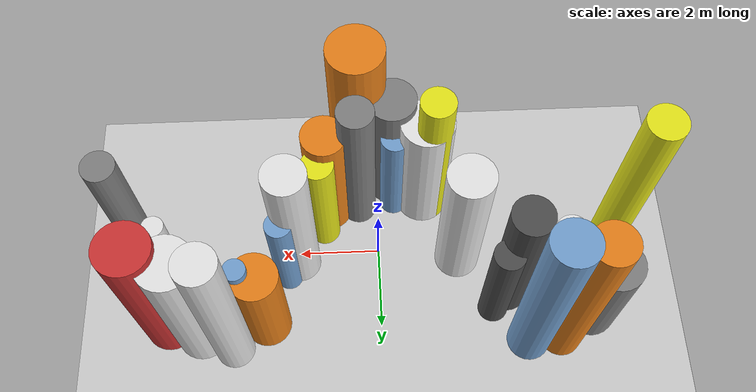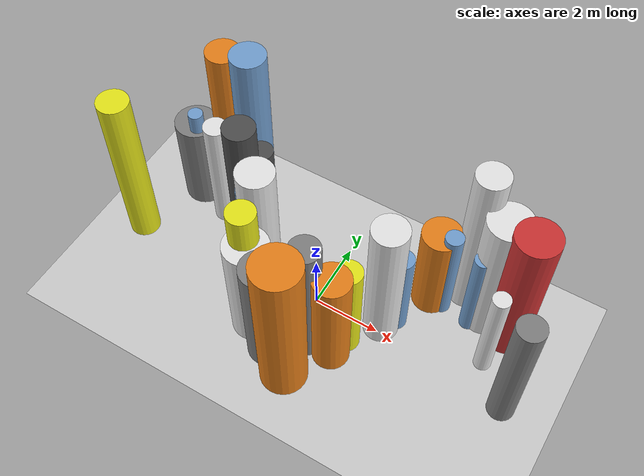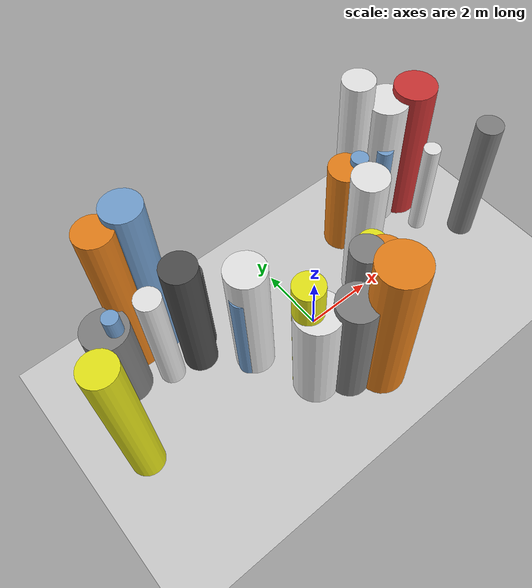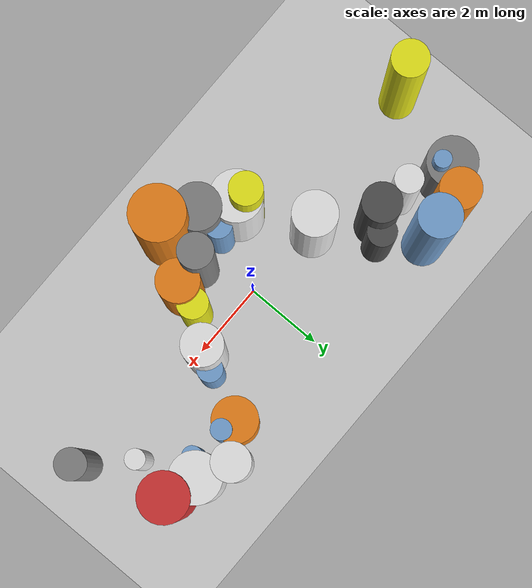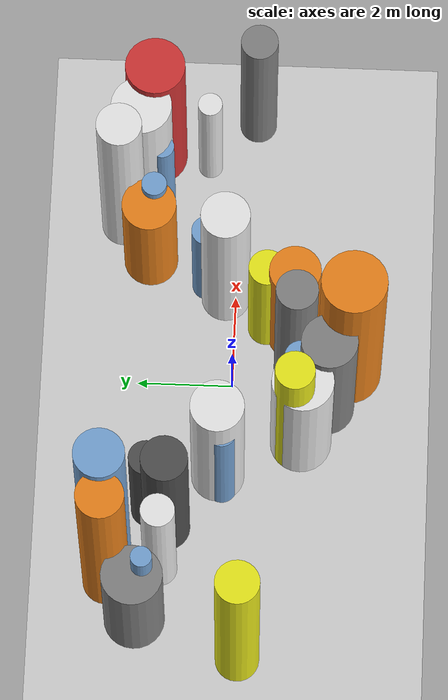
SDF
<?xml version='1.0'?>
<sdf version='1.6'>
  <world name='routeA_rl_v1__dense_recovery__rl_train__s_turn_multi_obstacle__000099'>
    <!-- Sun light -->
    <light name='sun' type='directional'>
      <cast_shadows>1</cast_shadows>
      <pose>0 0 10 0 0 0</pose>
      <diffuse>0.8 0.8 0.8 1</diffuse>
      <specular>0.2 0.2 0.2 1</specular>
      <attenuation>
        <range>1000</range>
        <constant>0.9</constant>
        <linear>0.01</linear>
        <quadratic>0.001</quadratic>
      </attenuation>
      <direction>-0.5 0.1 -0.9</direction>
    </light>

    <!-- Ground plane -->
    <model name='ground_plane'>
      <static>1</static>
      <link name='link'>
        <collision name='collision'>
          <geometry>
            <plane>
              <normal>0 0 1</normal>
              <size>100 100</size>
            </plane>
          </geometry>
          <surface>
            <contact>
              <collide_bitmask>65535</collide_bitmask>
              <ode/>
            </contact>
            <friction>
              <ode>
                <mu>100</mu>
                <mu2>50</mu2>
              </ode>
              <torsional><ode/></torsional>
            </friction>
            <bounce/>
          </surface>
          <max_contacts>10</max_contacts>
        </collision>
        <visual name='visual'>
          <cast_shadows>0</cast_shadows>
          <geometry>
            <plane>
              <normal>0 0 1</normal>
              <size>100 100</size>
            </plane>
          </geometry>
          <material>
            <script>
              <uri>file://media/materials/scripts/gazebo.material</uri>
              <n>Gazebo/Grey</n>
            </script>
          </material>
        </visual>
      </link>
    </model>

    <!-- Environment -->
    <magnetic_field>6e-06 2.3e-05 -4.2e-05</magnetic_field>
    <atmosphere type='adiabatic'/>
    <physics name='default_physics' default='0' type='ode'>
      <gravity>0 0 -9.8</gravity>
      <max_step_size>0.004</max_step_size>
      <real_time_factor>1</real_time_factor>
      <real_time_update_rate>250</real_time_update_rate>
    </physics>
    <scene>
      <ambient>0.4 0.4 0.4 1</ambient>
      <background>0.7 0.7 0.7 1</background>
      <shadows>1</shadows>
    </scene>
    <wind/>
    <spherical_coordinates>
      <surface_model>EARTH_WGS84</surface_model>
      <latitude_deg>0</latitude_deg>
      <longitude_deg>0</longitude_deg>
      <elevation>0</elevation>
      <heading_deg>0</heading_deg>
    </spherical_coordinates>

    <!-- ============ OBSTACLES (28) ============ -->
    <model name='s_turn_obs_0'>
      <static>1</static>
      <link name='link'>
        <visual name='visual'>
          <geometry>
            <cylinder>
              <radius>0.4562</radius>
              <length>5.4631</length>
            </cylinder>
          </geometry>
          <material>
            <script>
              <n>Gazebo/Yellow</n>
              <uri>file://media/materials/scripts/gazebo.material</uri>
            </script>
            <ambient>0.9 0.9 0.1 1</ambient>
          </material>
        </visual>
        <collision name='collision'>
          <geometry>
            <cylinder>
              <radius>0.4562</radius>
              <length>5.4631</length>
            </cylinder>
          </geometry>
          <max_contacts>10</max_contacts>
          <surface>
            <contact><ode/></contact>
            <bounce/>
            <friction>
              <ode><mu>1</mu><mu2>1</mu2></ode>
              <torsional><ode/></torsional>
            </friction>
          </surface>
        </collision>
      </link>
      <pose>-6.0000 -0.3263 2.7315 0 0 0.0000</pose>
    </model>

    <model name='s_turn_obs_1'>
      <static>1</static>
      <link name='link'>
        <visual name='visual'>
          <geometry>
            <cylinder>
              <radius>0.6330</radius>
              <length>3.0992</length>
            </cylinder>
          </geometry>
          <material>
            <script>
              <n>Gazebo/Grey</n>
              <uri>file://media/materials/scripts/gazebo.material</uri>
            </script>
            <ambient>0.5 0.5 0.5 1</ambient>
          </material>
        </visual>
        <collision name='collision'>
          <geometry>
            <cylinder>
              <radius>0.6330</radius>
              <length>3.0992</length>
            </cylinder>
          </geometry>
          <max_contacts>10</max_contacts>
          <surface>
            <contact><ode/></contact>
            <bounce/>
            <friction>
              <ode><mu>1</mu><mu2>1</mu2></ode>
              <torsional><ode/></torsional>
            </friction>
          </surface>
        </collision>
      </link>
      <pose>-5.2000 1.8387 1.5496 0 0 0.0000</pose>
    </model>

    <model name='s_turn_obs_2'>
      <static>1</static>
      <link name='link'>
        <visual name='visual'>
          <geometry>
            <cylinder>
              <radius>0.4954</radius>
              <length>5.7489</length>
            </cylinder>
          </geometry>
          <material>
            <script>
              <n>Gazebo/Orange</n>
              <uri>file://media/materials/scripts/gazebo.material</uri>
            </script>
            <ambient>0.9 0.5 0.1 1</ambient>
          </material>
        </visual>
        <collision name='collision'>
          <geometry>
            <cylinder>
              <radius>0.4954</radius>
              <length>5.7489</length>
            </cylinder>
          </geometry>
          <max_contacts>10</max_contacts>
          <surface>
            <contact><ode/></contact>
            <bounce/>
            <friction>
              <ode><mu>1</mu><mu2>1</mu2></ode>
              <torsional><ode/></torsional>
            </friction>
          </surface>
        </collision>
      </link>
      <pose>-4.4000 2.4538 2.8744 0 0 0.0000</pose>
    </model>

    <model name='s_turn_obs_3'>
      <static>1</static>
      <link name='link'>
        <visual name='visual'>
          <geometry>
            <cylinder>
              <radius>0.5235</radius>
              <length>5.9582</length>
            </cylinder>
          </geometry>
          <material>
            <script>
              <n>Gazebo/Blue</n>
              <uri>file://media/materials/scripts/gazebo.material</uri>
            </script>
            <ambient>0.447 0.624 0.812 1</ambient>
          </material>
        </visual>
        <collision name='collision'>
          <geometry>
            <cylinder>
              <radius>0.5235</radius>
              <length>5.9582</length>
            </cylinder>
          </geometry>
          <max_contacts>10</max_contacts>
          <surface>
            <contact><ode/></contact>
            <bounce/>
            <friction>
              <ode><mu>1</mu><mu2>1</mu2></ode>
              <torsional><ode/></torsional>
            </friction>
          </surface>
        </collision>
      </link>
      <pose>-3.6000 2.5004 2.9791 0 0 0.0000</pose>
    </model>

    <model name='s_turn_obs_4'>
      <static>1</static>
      <link name='link'>
        <visual name='visual'>
          <geometry>
            <cylinder>
              <radius>0.3674</radius>
              <length>3.4123</length>
            </cylinder>
          </geometry>
          <material>
            <script>
              <n>Gazebo/DarkGrey</n>
              <uri>file://media/materials/scripts/gazebo.material</uri>
            </script>
            <ambient>0.3 0.3 0.3 1</ambient>
          </material>
        </visual>
        <collision name='collision'>
          <geometry>
            <cylinder>
              <radius>0.3674</radius>
              <length>3.4123</length>
            </cylinder>
          </geometry>
          <max_contacts>10</max_contacts>
          <surface>
            <contact><ode/></contact>
            <bounce/>
            <friction>
              <ode><mu>1</mu><mu2>1</mu2></ode>
              <torsional><ode/></torsional>
            </friction>
          </surface>
        </collision>
      </link>
      <pose>-2.8000 1.6456 1.7061 0 0 0.0000</pose>
    </model>

    <model name='s_turn_obs_5'>
      <static>1</static>
      <link name='link'>
        <visual name='visual'>
          <geometry>
            <cylinder>
              <radius>0.5563</radius>
              <length>4.4629</length>
            </cylinder>
          </geometry>
          <material>
            <script>
              <n>Gazebo/White</n>
              <uri>file://media/materials/scripts/gazebo.material</uri>
            </script>
            <ambient>0.9 0.9 0.9 1</ambient>
          </material>
        </visual>
        <collision name='collision'>
          <geometry>
            <cylinder>
              <radius>0.5563</radius>
              <length>4.4629</length>
            </cylinder>
          </geometry>
          <max_contacts>10</max_contacts>
          <surface>
            <contact><ode/></contact>
            <bounce/>
            <friction>
              <ode><mu>1</mu><mu2>1</mu2></ode>
              <torsional><ode/></torsional>
            </friction>
          </surface>
        </collision>
      </link>
      <pose>-2.0000 0.2306 2.2315 0 0 0.0000</pose>
    </model>

    <model name='s_turn_obs_6'>
      <static>1</static>
      <link name='link'>
        <visual name='visual'>
          <geometry>
            <cylinder>
              <radius>0.6421</radius>
              <length>3.8679</length>
            </cylinder>
          </geometry>
          <material>
            <script>
              <n>Gazebo/White</n>
              <uri>file://media/materials/scripts/gazebo.material</uri>
            </script>
            <ambient>0.9 0.9 0.9 1</ambient>
          </material>
        </visual>
        <collision name='collision'>
          <geometry>
            <cylinder>
              <radius>0.6421</radius>
              <length>3.8679</length>
            </cylinder>
          </geometry>
          <max_contacts>10</max_contacts>
          <surface>
            <contact><ode/></contact>
            <bounce/>
            <friction>
              <ode><mu>1</mu><mu2>1</mu2></ode>
              <torsional><ode/></torsional>
            </friction>
          </surface>
        </collision>
      </link>
      <pose>-1.2000 -1.4800 1.9340 0 0 0.0000</pose>
    </model>

    <model name='s_turn_obs_7'>
      <static>1</static>
      <link name='link'>
        <visual name='visual'>
          <geometry>
            <cylinder>
              <radius>0.5845</radius>
              <length>4.0990</length>
            </cylinder>
          </geometry>
          <material>
            <script>
              <n>Gazebo/Grey</n>
              <uri>file://media/materials/scripts/gazebo.material</uri>
            </script>
            <ambient>0.5 0.5 0.5 1</ambient>
          </material>
        </visual>
        <collision name='collision'>
          <geometry>
            <cylinder>
              <radius>0.5845</radius>
              <length>4.0990</length>
            </cylinder>
          </geometry>
          <max_contacts>10</max_contacts>
          <surface>
            <contact><ode/></contact>
            <bounce/>
            <friction>
              <ode><mu>1</mu><mu2>1</mu2></ode>
              <torsional><ode/></torsional>
            </friction>
          </surface>
        </collision>
      </link>
      <pose>-0.4000 -1.9954 2.0495 0 0 0.0000</pose>
    </model>

    <model name='s_turn_obs_8'>
      <static>1</static>
      <link name='link'>
        <visual name='visual'>
          <geometry>
            <cylinder>
              <radius>0.6783</radius>
              <length>5.4381</length>
            </cylinder>
          </geometry>
          <material>
            <script>
              <n>Gazebo/Orange</n>
              <uri>file://media/materials/scripts/gazebo.material</uri>
            </script>
            <ambient>0.9 0.5 0.1 1</ambient>
          </material>
        </visual>
        <collision name='collision'>
          <geometry>
            <cylinder>
              <radius>0.6783</radius>
              <length>5.4381</length>
            </cylinder>
          </geometry>
          <max_contacts>10</max_contacts>
          <surface>
            <contact><ode/></contact>
            <bounce/>
            <friction>
              <ode><mu>1</mu><mu2>1</mu2></ode>
              <torsional><ode/></torsional>
            </friction>
          </surface>
        </collision>
      </link>
      <pose>0.4000 -2.4453 2.7190 0 0 0.0000</pose>
    </model>

    <model name='s_turn_obs_9'>
      <static>1</static>
      <link name='link'>
        <visual name='visual'>
          <geometry>
            <cylinder>
              <radius>0.5370</radius>
              <length>3.8668</length>
            </cylinder>
          </geometry>
          <material>
            <script>
              <n>Gazebo/Orange</n>
              <uri>file://media/materials/scripts/gazebo.material</uri>
            </script>
            <ambient>0.9 0.5 0.1 1</ambient>
          </material>
        </visual>
        <collision name='collision'>
          <geometry>
            <cylinder>
              <radius>0.5370</radius>
              <length>3.8668</length>
            </cylinder>
          </geometry>
          <max_contacts>10</max_contacts>
          <surface>
            <contact><ode/></contact>
            <bounce/>
            <friction>
              <ode><mu>1</mu><mu2>1</mu2></ode>
              <torsional><ode/></torsional>
            </friction>
          </surface>
        </collision>
      </link>
      <pose>1.2000 -1.2447 1.9334 0 0 0.0000</pose>
    </model>

    <model name='s_turn_obs_10'>
      <static>1</static>
      <link name='link'>
        <visual name='visual'>
          <geometry>
            <cylinder>
              <radius>0.5128</radius>
              <length>4.7902</length>
            </cylinder>
          </geometry>
          <material>
            <script>
              <n>Gazebo/White</n>
              <uri>file://media/materials/scripts/gazebo.material</uri>
            </script>
            <ambient>0.9 0.9 0.9 1</ambient>
          </material>
        </visual>
        <collision name='collision'>
          <geometry>
            <cylinder>
              <radius>0.5128</radius>
              <length>4.7902</length>
            </cylinder>
          </geometry>
          <max_contacts>10</max_contacts>
          <surface>
            <contact><ode/></contact>
            <bounce/>
            <friction>
              <ode><mu>1</mu><mu2>1</mu2></ode>
              <torsional><ode/></torsional>
            </friction>
          </surface>
        </collision>
      </link>
      <pose>2.0000 0.2168 2.3951 0 0 0.0000</pose>
    </model>

    <model name='s_turn_obs_11'>
      <static>1</static>
      <link name='link'>
        <visual name='visual'>
          <geometry>
            <cylinder>
              <radius>0.5695</radius>
              <length>3.2127</length>
            </cylinder>
          </geometry>
          <material>
            <script>
              <n>Gazebo/Orange</n>
              <uri>file://media/materials/scripts/gazebo.material</uri>
            </script>
            <ambient>0.9 0.5 0.1 1</ambient>
          </material>
        </visual>
        <collision name='collision'>
          <geometry>
            <cylinder>
              <radius>0.5695</radius>
              <length>3.2127</length>
            </cylinder>
          </geometry>
          <max_contacts>10</max_contacts>
          <surface>
            <contact><ode/></contact>
            <bounce/>
            <friction>
              <ode><mu>1</mu><mu2>1</mu2></ode>
              <torsional><ode/></torsional>
            </friction>
          </surface>
        </collision>
      </link>
      <pose>2.8000 1.8386 1.6064 0 0 0.0000</pose>
    </model>

    <model name='s_turn_obs_12'>
      <static>1</static>
      <link name='link'>
        <visual name='visual'>
          <geometry>
            <cylinder>
              <radius>0.4715</radius>
              <length>5.5328</length>
            </cylinder>
          </geometry>
          <material>
            <script>
              <n>Gazebo/White</n>
              <uri>file://media/materials/scripts/gazebo.material</uri>
            </script>
            <ambient>0.9 0.9 0.9 1</ambient>
          </material>
        </visual>
        <collision name='collision'>
          <geometry>
            <cylinder>
              <radius>0.4715</radius>
              <length>5.5328</length>
            </cylinder>
          </geometry>
          <max_contacts>10</max_contacts>
          <surface>
            <contact><ode/></contact>
            <bounce/>
            <friction>
              <ode><mu>1</mu><mu2>1</mu2></ode>
              <torsional><ode/></torsional>
            </friction>
          </surface>
        </collision>
      </link>
      <pose>3.6000 2.4510 2.7664 0 0 0.0000</pose>
    </model>

    <model name='s_turn_obs_13'>
      <static>1</static>
      <link name='link'>
        <visual name='visual'>
          <geometry>
            <cylinder>
              <radius>0.6304</radius>
              <length>4.6751</length>
            </cylinder>
          </geometry>
          <material>
            <script>
              <n>Gazebo/White</n>
              <uri>file://media/materials/scripts/gazebo.material</uri>
            </script>
            <ambient>0.9 0.9 0.9 1</ambient>
          </material>
        </visual>
        <collision name='collision'>
          <geometry>
            <cylinder>
              <radius>0.6304</radius>
              <length>4.6751</length>
            </cylinder>
          </geometry>
          <max_contacts>10</max_contacts>
          <surface>
            <contact><ode/></contact>
            <bounce/>
            <friction>
              <ode><mu>1</mu><mu2>1</mu2></ode>
              <torsional><ode/></torsional>
            </friction>
          </surface>
        </collision>
      </link>
      <pose>4.4000 2.0442 2.3375 0 0 0.0000</pose>
    </model>

    <model name='s_turn_obs_14'>
      <static>1</static>
      <link name='link'>
        <visual name='visual'>
          <geometry>
            <cylinder>
              <radius>0.6217</radius>
              <length>4.8868</length>
            </cylinder>
          </geometry>
          <material>
            <script>
              <n>Gazebo/Red</n>
              <uri>file://media/materials/scripts/gazebo.material</uri>
            </script>
            <ambient>0.8 0.2 0.2 1</ambient>
          </material>
        </visual>
        <collision name='collision'>
          <geometry>
            <cylinder>
              <radius>0.6217</radius>
              <length>4.8868</length>
            </cylinder>
          </geometry>
          <max_contacts>10</max_contacts>
          <surface>
            <contact><ode/></contact>
            <bounce/>
            <friction>
              <ode><mu>1</mu><mu2>1</mu2></ode>
              <torsional><ode/></torsional>
            </friction>
          </surface>
        </collision>
      </link>
      <pose>5.2000 1.7889 2.4434 0 0 0.0000</pose>
    </model>

    <model name='s_turn_obs_15'>
      <static>1</static>
      <link name='link'>
        <visual name='visual'>
          <geometry>
            <cylinder>
              <radius>0.3886</radius>
              <length>4.4620</length>
            </cylinder>
          </geometry>
          <material>
            <script>
              <n>Gazebo/Grey</n>
              <uri>file://media/materials/scripts/gazebo.material</uri>
            </script>
            <ambient>0.5 0.5 0.5 1</ambient>
          </material>
        </visual>
        <collision name='collision'>
          <geometry>
            <cylinder>
              <radius>0.3886</radius>
              <length>4.4620</length>
            </cylinder>
          </geometry>
          <max_contacts>10</max_contacts>
          <surface>
            <contact><ode/></contact>
            <bounce/>
            <friction>
              <ode><mu>1</mu><mu2>1</mu2></ode>
              <torsional><ode/></torsional>
            </friction>
          </surface>
        </collision>
      </link>
      <pose>6.0000 -0.3356 2.2310 0 0 0.0000</pose>
    </model>

    <model name='s_turn_obs2_0'>
      <static>1</static>
      <link name='link'>
        <visual name='visual'>
          <geometry>
            <cylinder>
              <radius>0.2207</radius>
              <length>3.7185</length>
            </cylinder>
          </geometry>
          <material>
            <script>
              <n>Gazebo/Blue</n>
              <uri>file://media/materials/scripts/gazebo.material</uri>
            </script>
            <ambient>0.447 0.624 0.812 1</ambient>
          </material>
        </visual>
        <collision name='collision'>
          <geometry>
            <cylinder>
              <radius>0.2207</radius>
              <length>3.7185</length>
            </cylinder>
          </geometry>
          <max_contacts>10</max_contacts>
          <surface>
            <contact><ode/></contact>
            <bounce/>
            <friction>
              <ode><mu>1</mu><mu2>1</mu2></ode>
              <torsional><ode/></torsional>
            </friction>
          </surface>
        </collision>
      </link>
      <pose>-5.0000 1.6427 1.8592 0 0 0.0000</pose>
    </model>

    <model name='s_turn_obs2_1'>
      <static>1</static>
      <link name='link'>
        <visual name='visual'>
          <geometry>
            <cylinder>
              <radius>0.3544</radius>
              <length>3.9677</length>
            </cylinder>
          </geometry>
          <material>
            <script>
              <n>Gazebo/White</n>
              <uri>file://media/materials/scripts/gazebo.material</uri>
            </script>
            <ambient>0.9 0.9 0.9 1</ambient>
          </material>
        </visual>
        <collision name='collision'>
          <geometry>
            <cylinder>
              <radius>0.3544</radius>
              <length>3.9677</length>
            </cylinder>
          </geometry>
          <max_contacts>10</max_contacts>
          <surface>
            <contact><ode/></contact>
            <bounce/>
            <friction>
              <ode><mu>1</mu><mu2>1</mu2></ode>
              <torsional><ode/></torsional>
            </friction>
          </surface>
        </collision>
      </link>
      <pose>-4.0909 1.3493 1.9838 0 0 0.0000</pose>
    </model>

    <model name='s_turn_obs2_2'>
      <static>1</static>
      <link name='link'>
        <visual name='visual'>
          <geometry>
            <cylinder>
              <radius>0.4855</radius>
              <length>4.5311</length>
            </cylinder>
          </geometry>
          <material>
            <script>
              <n>Gazebo/DarkGrey</n>
              <uri>file://media/materials/scripts/gazebo.material</uri>
            </script>
            <ambient>0.3 0.3 0.3 1</ambient>
          </material>
        </visual>
        <collision name='collision'>
          <geometry>
            <cylinder>
              <radius>0.4855</radius>
              <length>4.5311</length>
            </cylinder>
          </geometry>
          <max_contacts>10</max_contacts>
          <surface>
            <contact><ode/></contact>
            <bounce/>
            <friction>
              <ode><mu>1</mu><mu2>1</mu2></ode>
              <torsional><ode/></torsional>
            </friction>
          </surface>
        </collision>
      </link>
      <pose>-3.1818 1.2489 2.2655 0 0 0.0000</pose>
    </model>

    <model name='s_turn_obs2_3'>
      <static>1</static>
      <link name='link'>
        <visual name='visual'>
          <geometry>
            <cylinder>
              <radius>0.3106</radius>
              <length>3.6289</length>
            </cylinder>
          </geometry>
          <material>
            <script>
              <n>Gazebo/Blue</n>
              <uri>file://media/materials/scripts/gazebo.material</uri>
            </script>
            <ambient>0.447 0.624 0.812 1</ambient>
          </material>
        </visual>
        <collision name='collision'>
          <geometry>
            <cylinder>
              <radius>0.3106</radius>
              <length>3.6289</length>
            </cylinder>
          </geometry>
          <max_contacts>10</max_contacts>
          <surface>
            <contact><ode/></contact>
            <bounce/>
            <friction>
              <ode><mu>1</mu><mu2>1</mu2></ode>
              <torsional><ode/></torsional>
            </friction>
          </surface>
        </collision>
      </link>
      <pose>-2.2727 0.1358 1.8145 0 0 0.0000</pose>
    </model>

    <model name='s_turn_obs2_4'>
      <static>1</static>
      <link name='link'>
        <visual name='visual'>
          <geometry>
            <cylinder>
              <radius>0.4101</radius>
              <length>4.9687</length>
            </cylinder>
          </geometry>
          <material>
            <script>
              <n>Gazebo/Yellow</n>
              <uri>file://media/materials/scripts/gazebo.material</uri>
            </script>
            <ambient>0.9 0.9 0.1 1</ambient>
          </material>
        </visual>
        <collision name='collision'>
          <geometry>
            <cylinder>
              <radius>0.4101</radius>
              <length>4.9687</length>
            </cylinder>
          </geometry>
          <max_contacts>10</max_contacts>
          <surface>
            <contact><ode/></contact>
            <bounce/>
            <friction>
              <ode><mu>1</mu><mu2>1</mu2></ode>
              <torsional><ode/></torsional>
            </friction>
          </surface>
        </collision>
      </link>
      <pose>-1.3636 -1.3147 2.4844 0 0 0.0000</pose>
    </model>

    <model name='s_turn_obs2_5'>
      <static>1</static>
      <link name='link'>
        <visual name='visual'>
          <geometry>
            <cylinder>
              <radius>0.3429</radius>
              <length>3.2979</length>
            </cylinder>
          </geometry>
          <material>
            <script>
              <n>Gazebo/Blue</n>
              <uri>file://media/materials/scripts/gazebo.material</uri>
            </script>
            <ambient>0.447 0.624 0.812 1</ambient>
          </material>
        </visual>
        <collision name='collision'>
          <geometry>
            <cylinder>
              <radius>0.3429</radius>
              <length>3.2979</length>
            </cylinder>
          </geometry>
          <max_contacts>10</max_contacts>
          <surface>
            <contact><ode/></contact>
            <bounce/>
            <friction>
              <ode><mu>1</mu><mu2>1</mu2></ode>
              <torsional><ode/></torsional>
            </friction>
          </surface>
        </collision>
      </link>
      <pose>-0.4545 -1.4290 1.6489 0 0 0.0000</pose>
    </model>

    <model name='s_turn_obs2_6'>
      <static>1</static>
      <link name='link'>
        <visual name='visual'>
          <geometry>
            <cylinder>
              <radius>0.4385</radius>
              <length>4.7265</length>
            </cylinder>
          </geometry>
          <material>
            <script>
              <n>Gazebo/Grey</n>
              <uri>file://media/materials/scripts/gazebo.material</uri>
            </script>
            <ambient>0.5 0.5 0.5 1</ambient>
          </material>
        </visual>
        <collision name='collision'>
          <geometry>
            <cylinder>
              <radius>0.4385</radius>
              <length>4.7265</length>
            </cylinder>
          </geometry>
          <max_contacts>10</max_contacts>
          <surface>
            <contact><ode/></contact>
            <bounce/>
            <friction>
              <ode><mu>1</mu><mu2>1</mu2></ode>
              <torsional><ode/></torsional>
            </friction>
          </surface>
        </collision>
      </link>
      <pose>0.4545 -1.2985 2.3633 0 0 0.0000</pose>
    </model>

    <model name='s_turn_obs2_7'>
      <static>1</static>
      <link name='link'>
        <visual name='visual'>
          <geometry>
            <cylinder>
              <radius>0.3900</radius>
              <length>3.5629</length>
            </cylinder>
          </geometry>
          <material>
            <script>
              <n>Gazebo/Yellow</n>
              <uri>file://media/materials/scripts/gazebo.material</uri>
            </script>
            <ambient>0.9 0.9 0.1 1</ambient>
          </material>
        </visual>
        <collision name='collision'>
          <geometry>
            <cylinder>
              <radius>0.3900</radius>
              <length>3.5629</length>
            </cylinder>
          </geometry>
          <max_contacts>10</max_contacts>
          <surface>
            <contact><ode/></contact>
            <bounce/>
            <friction>
              <ode><mu>1</mu><mu2>1</mu2></ode>
              <torsional><ode/></torsional>
            </friction>
          </surface>
        </collision>
      </link>
      <pose>1.3636 -0.6691 1.7814 0 0 0.0000</pose>
    </model>

    <model name='s_turn_obs2_8'>
      <static>1</static>
      <link name='link'>
        <visual name='visual'>
          <geometry>
            <cylinder>
              <radius>0.3203</radius>
              <length>3.1878</length>
            </cylinder>
          </geometry>
          <material>
            <script>
              <n>Gazebo/Blue</n>
              <uri>file://media/materials/scripts/gazebo.material</uri>
            </script>
            <ambient>0.447 0.624 0.812 1</ambient>
          </material>
        </visual>
        <collision name='collision'>
          <geometry>
            <cylinder>
              <radius>0.3203</radius>
              <length>3.1878</length>
            </cylinder>
          </geometry>
          <max_contacts>10</max_contacts>
          <surface>
            <contact><ode/></contact>
            <bounce/>
            <friction>
              <ode><mu>1</mu><mu2>1</mu2></ode>
              <torsional><ode/></torsional>
            </friction>
          </surface>
        </collision>
      </link>
      <pose>2.2727 0.6156 1.5939 0 0 0.0000</pose>
    </model>

    <model name='s_turn_obs2_9'>
      <static>1</static>
      <link name='link'>
        <visual name='visual'>
          <geometry>
            <cylinder>
              <radius>0.2630</radius>
              <length>3.4263</length>
            </cylinder>
          </geometry>
          <material>
            <script>
              <n>Gazebo/Blue</n>
              <uri>file://media/materials/scripts/gazebo.material</uri>
            </script>
            <ambient>0.447 0.624 0.812 1</ambient>
          </material>
        </visual>
        <collision name='collision'>
          <geometry>
            <cylinder>
              <radius>0.2630</radius>
              <length>3.4263</length>
            </cylinder>
          </geometry>
          <max_contacts>10</max_contacts>
          <surface>
            <contact><ode/></contact>
            <bounce/>
            <friction>
              <ode><mu>1</mu><mu2>1</mu2></ode>
              <torsional><ode/></torsional>
            </friction>
          </surface>
        </collision>
      </link>
      <pose>3.1818 1.7447 1.7132 0 0 0.0000</pose>
    </model>

    <model name='s_turn_obs2_10'>
      <static>1</static>
      <link name='link'>
        <visual name='visual'>
          <geometry>
            <cylinder>
              <radius>0.2519</radius>
              <length>3.2479</length>
            </cylinder>
          </geometry>
          <material>
            <script>
              <n>Gazebo/Blue</n>
              <uri>file://media/materials/scripts/gazebo.material</uri>
            </script>
            <ambient>0.447 0.624 0.812 1</ambient>
          </material>
        </visual>
        <collision name='collision'>
          <geometry>
            <cylinder>
              <radius>0.2519</radius>
              <length>3.2479</length>
            </cylinder>
          </geometry>
          <max_contacts>10</max_contacts>
          <surface>
            <contact><ode/></contact>
            <bounce/>
            <friction>
              <ode><mu>1</mu><mu2>1</mu2></ode>
              <torsional><ode/></torsional>
            </friction>
          </surface>
        </collision>
      </link>
      <pose>4.0909 1.6206 1.6240 0 0 0.0000</pose>
    </model>

    <model name='s_turn_obs2_11'>
      <static>1</static>
      <link name='link'>
        <visual name='visual'>
          <geometry>
            <cylinder>
              <radius>0.2540</radius>
              <length>3.4372</length>
            </cylinder>
          </geometry>
          <material>
            <script>
              <n>Gazebo/White</n>
              <uri>file://media/materials/scripts/gazebo.material</uri>
            </script>
            <ambient>0.9 0.9 0.9 1</ambient>
          </material>
        </visual>
        <collision name='collision'>
          <geometry>
            <cylinder>
              <radius>0.2540</radius>
              <length>3.4372</length>
            </cylinder>
          </geometry>
          <max_contacts>10</max_contacts>
          <surface>
            <contact><ode/></contact>
            <bounce/>
            <friction>
              <ode><mu>1</mu><mu2>1</mu2></ode>
              <torsional><ode/></torsional>
            </friction>
          </surface>
        </collision>
      </link>
      <pose>5.0000 0.6544 1.7186 0 0 0.0000</pose>
    </model>

    <!-- GUI camera -->
    <gui fullscreen='0'>
      <camera name='user_camera'>
        <pose>-15 0 18 0 0.85 0.15</pose>
        <view_controller>orbit</view_controller>
        <projection_type>perspective</projection_type>
      </camera>
    </gui>
  </world>
</sdf>
